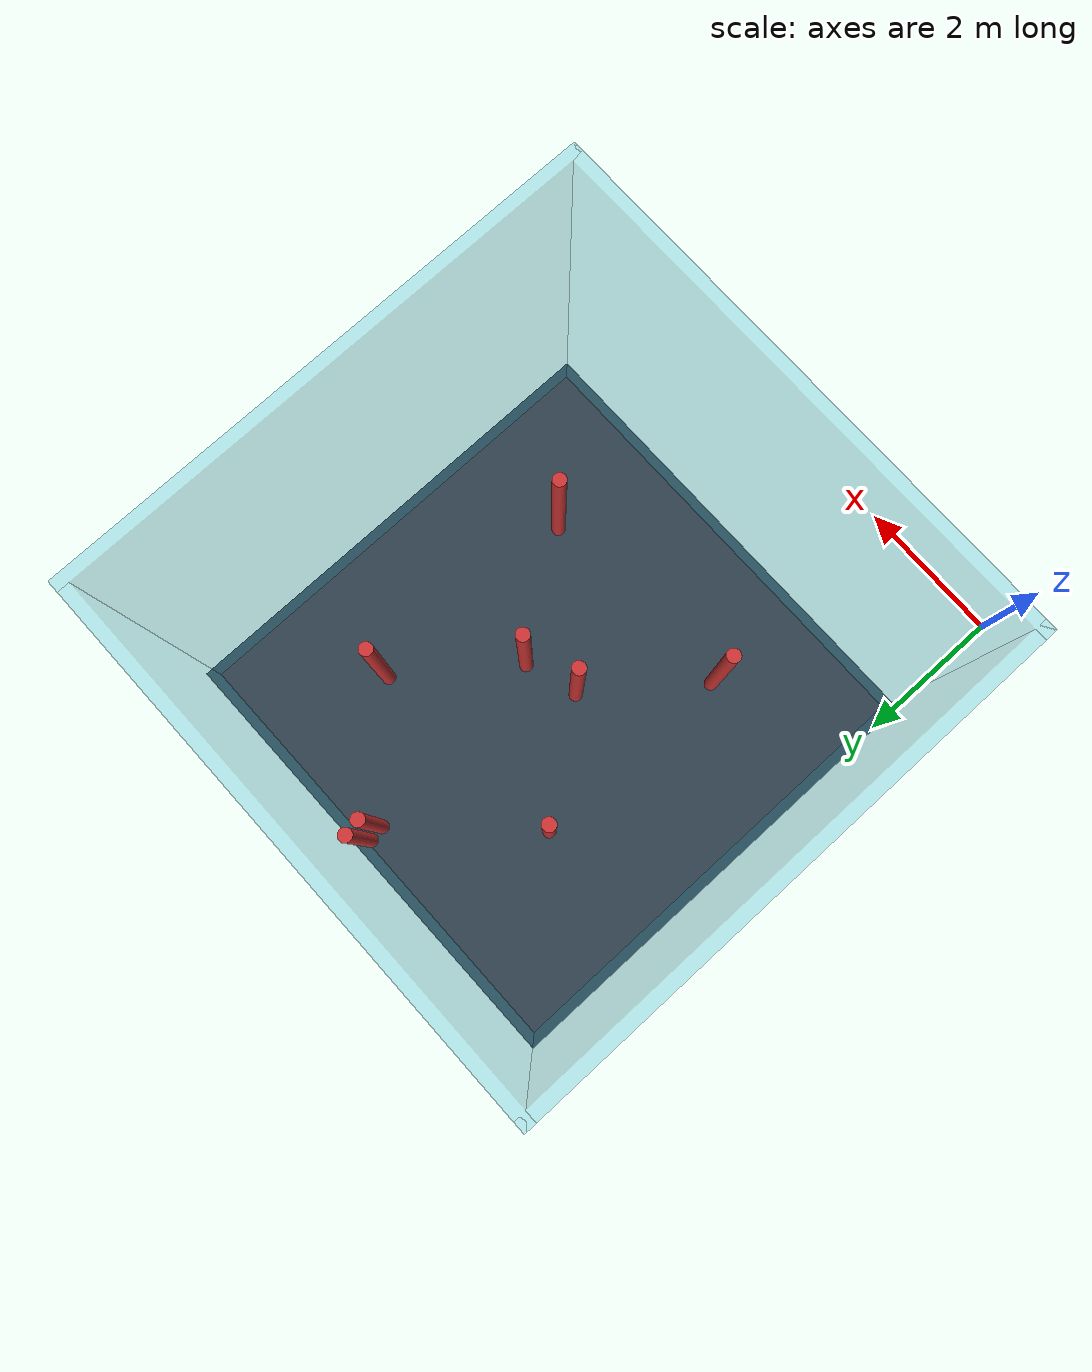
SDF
<sdf version="1.6">
 <world name="bluerov2_ping">
  <spherical_coordinates>
   <surface_model>EARTH_WGS84</surface_model>
   <world_frame_orientation>ENU</world_frame_orientation>
   <latitude_deg>0.0000</latitude_deg>
   <longitude_deg>0.0000</longitude_deg>
   <elevation>0</elevation>
   <heading_deg>0</heading_deg>
  </spherical_coordinates>
  <plugin filename="gz-sim-physics-system" name="gz::sim::systems::Physics"/>
  <plugin filename="gz-sim-user-commands-system" name="gz::sim::systems::UserCommands"/>
  <plugin filename="gz-sim-scene-broadcaster-system" name="gz::sim::systems::SceneBroadcaster"/>
  <plugin filename="libgz-sim-imu-system.so" name="gz::sim::systems::Imu"/>
  <plugin filename="gz-sim-sensors-system" name="gz::sim::systems::Sensors">
   <render_engine>ogre2</render_engine>
  </plugin>
  <plugin filename="gz-sim-buoyancy-system" name="gz::sim::systems::Buoyancy">
   <graded_buoyancy>
    <default_density>1000</default_density>
    <density_change><above_depth>0</above_depth><density>1</density></density_change>
   </graded_buoyancy>
   <enable>bluerov2_ping</enable>
  </plugin>
  <plugin filename="gz-sim-hydrodynamics-system" name="gz::sim::systems::Hydrodynamics">
   <default_current>0.15 -0.2 0.2</default_current>
   <enable>bluerov2_ping</enable>
  </plugin>
  <include><uri>https://fuel.gazebosim.org/1.0/OpenRobotics/models/Sun</uri></include>
  <model name="underwater_tank">
   <static>true</static>
   <pose>4.0 4.0 -4 0 0 0</pose>
   <link name="floor">
    <pose>0 0 -4.0 0 0 0</pose>
    <collision name="collision"><geometry><box><size>9.4 9.4 0.2</size></box></geometry></collision>
    <visual name="visual">
     <geometry><box><size>9.4 9.4 0.2</size></box></geometry>
     <material>
      <ambient>0.18 0.25 0.30 1</ambient>
      <diffuse>0.18 0.25 0.30 1</diffuse>
      <specular>0.25 0.25 0.25 1</specular>
     </material>
    </visual>
   </link>
   <link name="wall_left">
    <pose>-4.6 0 0 0 0 0</pose>
    <collision name="collision"><geometry><box><size>0.2 9.4 8</size></box></geometry></collision>
    <visual name="visual">
     <geometry><box><size>0.2 9.4 8</size></box></geometry>
     <transparency>0.35</transparency>
     <material>
      <ambient>0.25 0.75 0.85 0.35</ambient>
      <diffuse>0.25 0.75 0.85 0.35</diffuse>
      <specular>0.8 0.9 1.0 0.35</specular>
     </material>
    </visual>
   </link>
   <link name="wall_right">
    <pose>4.6 0 0 0 0 0</pose>
    <collision name="collision"><geometry><box><size>0.2 9.4 8</size></box></geometry></collision>
    <visual name="visual">
     <geometry><box><size>0.2 9.4 8</size></box></geometry>
     <transparency>0.35</transparency>
     <material>
      <ambient>0.25 0.75 0.85 0.35</ambient>
      <diffuse>0.25 0.75 0.85 0.35</diffuse>
      <specular>0.8 0.9 1.0 0.35</specular>
     </material>
    </visual>
   </link>
   <link name="wall_front">
    <pose>0 -4.6 0 0 0 0</pose>
    <collision name="collision"><geometry><box><size>9.4 0.2 8</size></box></geometry></collision>
    <visual name="visual">
     <geometry><box><size>9.4 0.2 8</size></box></geometry>
     <transparency>0.35</transparency>
     <material>
      <ambient>0.25 0.75 0.85 0.35</ambient>
      <diffuse>0.25 0.75 0.85 0.35</diffuse>
      <specular>0.8 0.9 1.0 0.35</specular>
     </material>
    </visual>
   </link>
   <link name="wall_back">
    <pose>0 4.6 0 0 0 0</pose>
    <collision name="collision"><geometry><box><size>9.4 0.2 8</size></box></geometry></collision>
    <visual name="visual">
     <geometry><box><size>9.4 0.2 8</size></box></geometry>
     <transparency>0.35</transparency>
     <material>
      <ambient>0.25 0.75 0.85 0.35</ambient>
      <diffuse>0.25 0.75 0.85 0.35</diffuse>
      <specular>0.8 0.9 1.0 0.35</specular>
     </material>
    </visual>
   </link>
   <light name="tank_light" type="point">
    <pose>0 0 3 0 0 0</pose>
    <diffuse>0.75 0.90 1.0 1</diffuse>
    <specular>0.4 0.5 0.6 1</specular>
    <attenuation>
     <range>20</range>
     <constant>0.5</constant>
     <linear>0.02</linear>
     <quadratic>0.002</quadratic>
    </attenuation>
   </light>
  </model>
  <model name="cylinder_obstacle_0">
   <static>true</static>
   <pose>6 2 -5 0 0 0</pose>
   <link name="obstacle_link">
    <collision name="collision">
     <geometry><cylinder><radius>0.125</radius><length>3.0</length></cylinder></geometry>
    </collision>
    <visual name="visual">
     <geometry><cylinder><radius>0.125</radius><length>3.0</length></cylinder></geometry>
     <material><ambient>0.8 0.2 0.2 1</ambient><diffuse>0.8 0.2 0.2 1</diffuse></material>
    </visual>
   </link>
  </model>
  <model name="cylinder_obstacle_1">
   <static>true</static>
   <pose>2 1.9 -5 0 0 0</pose>
   <link name="obstacle_link">
    <collision name="collision">
     <geometry><cylinder><radius>0.125</radius><length>3.0</length></cylinder></geometry>
    </collision>
    <visual name="visual">
     <geometry><cylinder><radius>0.125</radius><length>3.0</length></cylinder></geometry>
     <material><ambient>0.8 0.2 0.2 1</ambient><diffuse>0.8 0.2 0.2 1</diffuse></material>
    </visual>
   </link>
  </model>
  <model name="cylinder_obstacle_2">
   <static>true</static>
   <pose>3.5 3.85 -5 0 0 0</pose>
   <link name="obstacle_link">
    <collision name="collision">
     <geometry><cylinder><radius>0.125</radius><length>3.0</length></cylinder></geometry>
    </collision>
    <visual name="visual">
     <geometry><cylinder><radius>0.125</radius><length>3.0</length></cylinder></geometry>
     <material><ambient>0.8 0.2 0.2 1</ambient><diffuse>0.8 0.2 0.2 1</diffuse></material>
    </visual>
   </link>
  </model>
  <model name="cylinder_obstacle_3">
   <static>true</static>
   <pose>4.5 4.15 -5 0 0 0</pose>
   <link name="obstacle_link">
    <collision name="collision">
     <geometry><cylinder><radius>0.125</radius><length>3.0</length></cylinder></geometry>
    </collision>
    <visual name="visual">
     <geometry><cylinder><radius>0.125</radius><length>3.0</length></cylinder></geometry>
     <material><ambient>0.8 0.2 0.2 1</ambient><diffuse>0.8 0.2 0.2 1</diffuse></material>
    </visual>
   </link>
  </model>
  <model name="cylinder_obstacle_4">
   <static>true</static>
   <pose>2 5.85 -5 0 0 0</pose>
   <link name="obstacle_link">
    <collision name="collision">
     <geometry><cylinder><radius>0.125</radius><length>3.0</length></cylinder></geometry>
    </collision>
    <visual name="visual">
     <geometry><cylinder><radius>0.125</radius><length>3.0</length></cylinder></geometry>
     <material><ambient>0.8 0.2 0.2 1</ambient><diffuse>0.8 0.2 0.2 1</diffuse></material>
    </visual>
   </link>
  </model>
  <model name="cylinder_obstacle_5">
   <static>true</static>
   <pose>6 6.15 -5 0 0 0</pose>
   <link name="obstacle_link">
    <collision name="collision">
     <geometry><cylinder><radius>0.125</radius><length>3.0</length></cylinder></geometry>
    </collision>
    <visual name="visual">
     <geometry><cylinder><radius>0.125</radius><length>3.0</length></cylinder></geometry>
     <material><ambient>0.8 0.2 0.2 1</ambient><diffuse>0.8 0.2 0.2 1</diffuse></material>
    </visual>
   </link>
  </model>
  <model name="cylinder_obstacle_6">
   <static>true</static>
   <pose>4 8.30 -5 0 0 0</pose>
   <link name="obstacle_link">
    <collision name="collision">
     <geometry><cylinder><radius>0.125</radius><length>3.0</length></cylinder></geometry>
    </collision>
    <visual name="visual">
     <geometry><cylinder><radius>0.125</radius><length>3.0</length></cylinder></geometry>
     <material><ambient>0.8 0.2 0.2 1</ambient><diffuse>0.8 0.2 0.2 1</diffuse></material>
    </visual>
   </link>
  </model>
  <model name="cylinder_obstacle_7">
   <static>true</static>
   <pose>4.05 8.0 -5 0 0 0</pose>
   <link name="obstacle_link">
    <collision name="collision">
     <geometry><cylinder><radius>0.125</radius><length>3.0</length></cylinder></geometry>
    </collision>
    <visual name="visual">
     <geometry><cylinder><radius>0.125</radius><length>3.0</length></cylinder></geometry>
     <material><ambient>0.8 0.2 0.2 1</ambient><diffuse>0.8 0.2 0.2 1</diffuse></material>
    </visual>
   </link>
  </model>
 </world>
</sdf>
